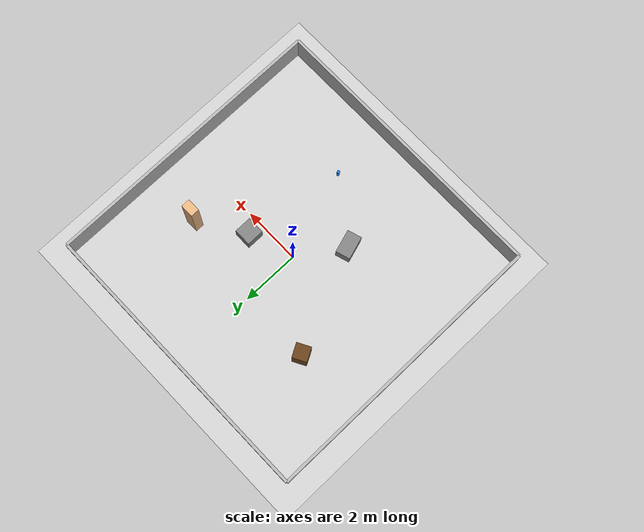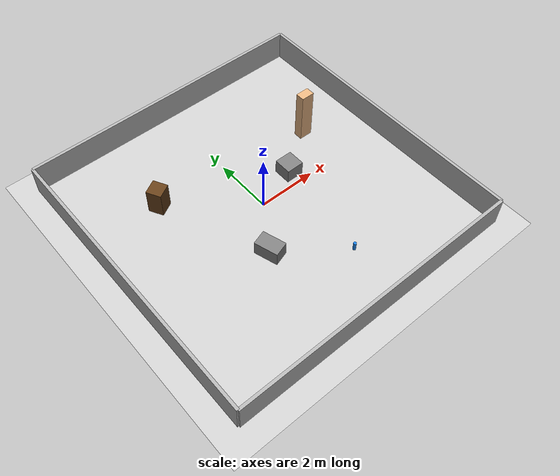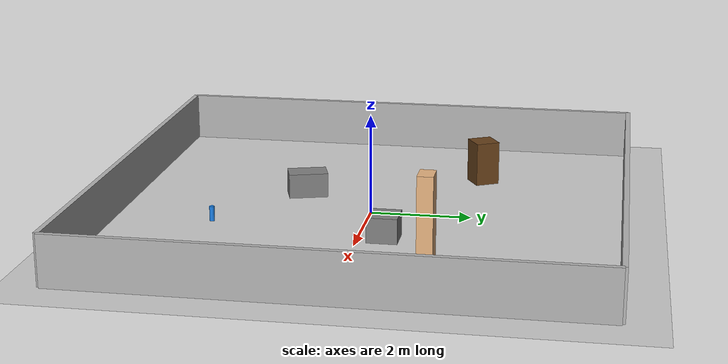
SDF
<?xml version="1.0" ?>
<!--
  Nav2 + YOLOv8 Demo World
  TurtleBot3 spawns at origin. Objects (chair, bottle, person-like box)
  are scattered at known positions for the demo.
-->
<sdf version="1.6">
  <world name="nav2_yolo_demo">

    <!-- Lighting -->
    <include>
      <uri>model://sun</uri>
    </include>

    <!-- Ground plane -->
    <include>
      <uri>model://ground_plane</uri>
    </include>

    <!-- Bounding walls -->
    <model name="wall_north">
      <static>true</static>
      <pose>0 5 0.5 0 0 0</pose>
      <link name="link">
        <collision name="col"><geometry><box><size>10 0.1 1</size></box></geometry></collision>
        <visual name="vis"><geometry><box><size>10 0.1 1</size></box></geometry>
          <material><ambient>0.7 0.7 0.7 1</ambient></material>
        </visual>
      </link>
    </model>

    <model name="wall_south">
      <static>true</static>
      <pose>0 -5 0.5 0 0 0</pose>
      <link name="link">
        <collision name="col"><geometry><box><size>10 0.1 1</size></box></geometry></collision>
        <visual name="vis"><geometry><box><size>10 0.1 1</size></box></geometry>
          <material><ambient>0.7 0.7 0.7 1</ambient></material>
        </visual>
      </link>
    </model>

    <model name="wall_east">
      <static>true</static>
      <pose>5 0 0.5 0 0 1.5708</pose>
      <link name="link">
        <collision name="col"><geometry><box><size>10 0.1 1</size></box></geometry></collision>
        <visual name="vis"><geometry><box><size>10 0.1 1</size></box></geometry>
          <material><ambient>0.7 0.7 0.7 1</ambient></material>
        </visual>
      </link>
    </model>

    <model name="wall_west">
      <static>true</static>
      <pose>-5 0 0.5 0 0 1.5708</pose>
      <link name="link">
        <collision name="col"><geometry><box><size>10 0.1 1</size></box></geometry></collision>
        <visual name="vis"><geometry><box><size>10 0.1 1</size></box></geometry>
          <material><ambient>0.7 0.7 0.7 1</ambient></material>
        </visual>
      </link>
    </model>

    <!-- Target object: "person" proxy (tall box, human proportions) -->
    <model name="person_proxy">
      <static>true</static>
      <pose>3.0 1.5 0.9 0 0 0</pose>
      <link name="link">
        <collision name="col"><geometry><box><size>0.45 0.3 1.8</size></box></geometry></collision>
        <visual name="vis">
          <geometry><box><size>0.45 0.3 1.8</size></box></geometry>
          <material><ambient>0.9 0.7 0.5 1</ambient><diffuse>0.9 0.7 0.5 1</diffuse></material>
        </visual>
      </link>
    </model>

    <!-- Target object: chair -->
    <model name="chair_target">
      <static>true</static>
      <pose>-2.5 2.0 0.45 0 0 0.5</pose>
      <link name="link">
        <collision name="col"><geometry><box><size>0.5 0.5 0.9</size></box></geometry></collision>
        <visual name="vis">
          <geometry><box><size>0.5 0.5 0.9</size></box></geometry>
          <material><ambient>0.4 0.25 0.1 1</ambient><diffuse>0.4 0.25 0.1 1</diffuse></material>
        </visual>
      </link>
    </model>

    <!-- Target object: bottle (cylinder) -->
    <model name="bottle_target">
      <static>true</static>
      <pose>1.0 -3.0 0.15 0 0 0</pose>
      <link name="link">
        <collision name="col"><geometry><cylinder><radius>0.05</radius><length>0.30</length></cylinder></geometry></collision>
        <visual name="vis">
          <geometry><cylinder><radius>0.05</radius><length>0.30</length></cylinder></geometry>
          <material><ambient>0.1 0.5 0.9 1</ambient><diffuse>0.1 0.5 0.9 1</diffuse></material>
        </visual>
      </link>
    </model>

    <!-- Obstacle box 1 -->
    <model name="obstacle_1">
      <static>true</static>
      <pose>1.5 0.5 0.25 0 0 0</pose>
      <link name="link">
        <collision name="col"><geometry><box><size>0.6 0.6 0.5</size></box></geometry></collision>
        <visual name="vis">
          <geometry><box><size>0.6 0.6 0.5</size></box></geometry>
          <material><ambient>0.5 0.5 0.5 1</ambient></material>
        </visual>
      </link>
    </model>

    <!-- Obstacle box 2 -->
    <model name="obstacle_2">
      <static>true</static>
      <pose>-1.0 -1.5 0.25 0 0 0.3</pose>
      <link name="link">
        <collision name="col"><geometry><box><size>0.5 0.8 0.5</size></box></geometry></collision>
        <visual name="vis">
          <geometry><box><size>0.5 0.8 0.5</size></box></geometry>
          <material><ambient>0.5 0.5 0.5 1</ambient></material>
        </visual>
      </link>
    </model>

  </world>
</sdf>
